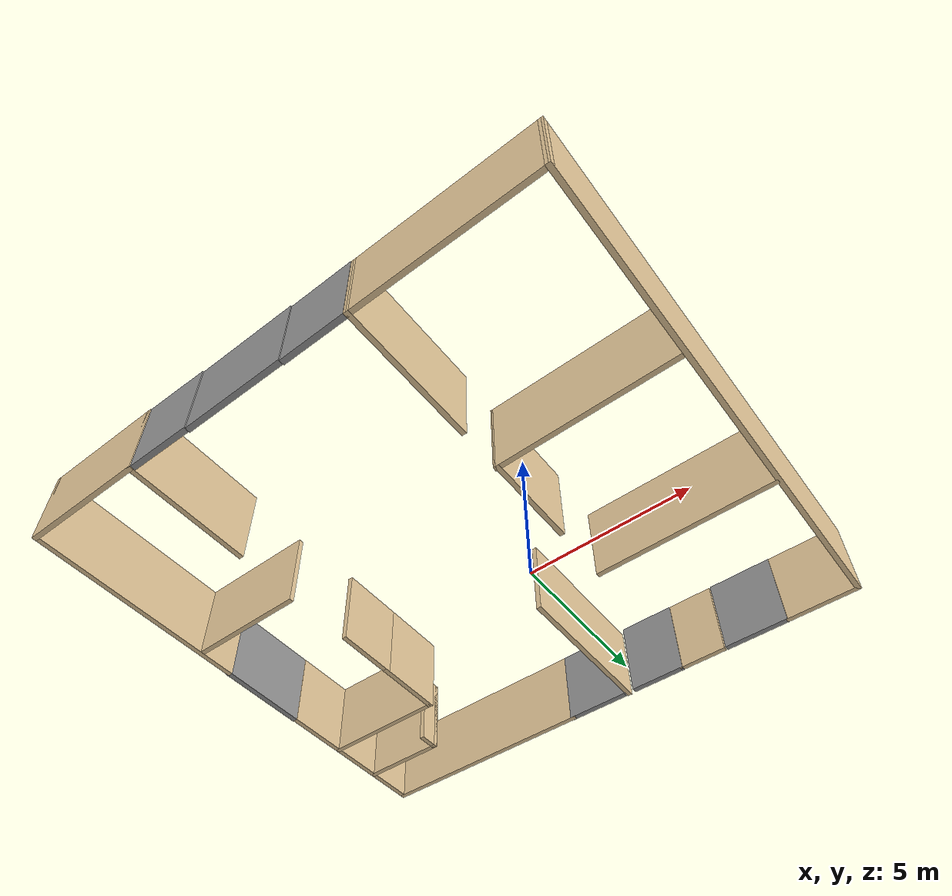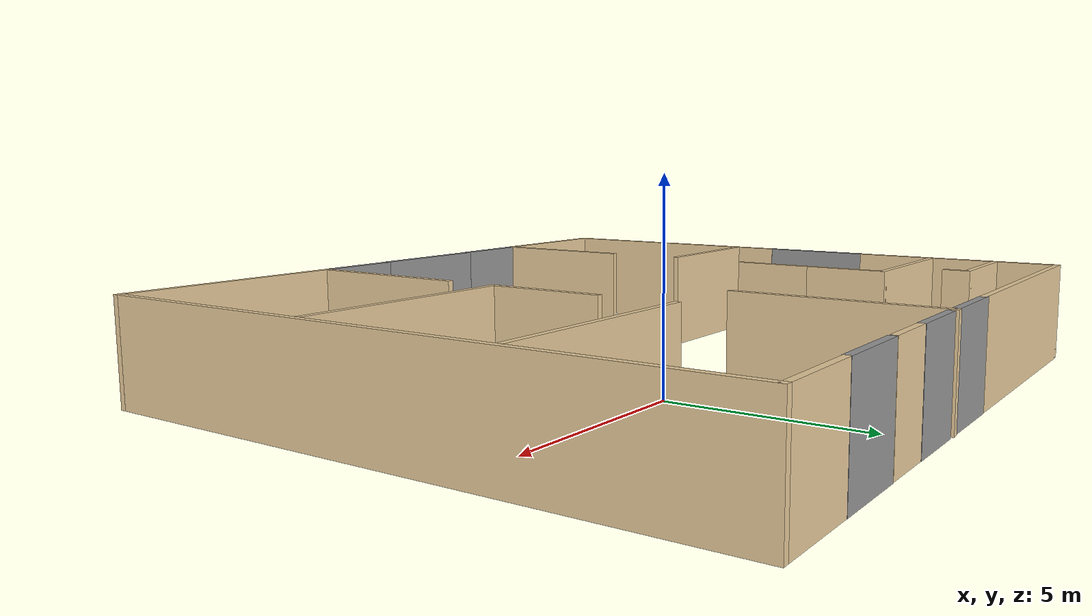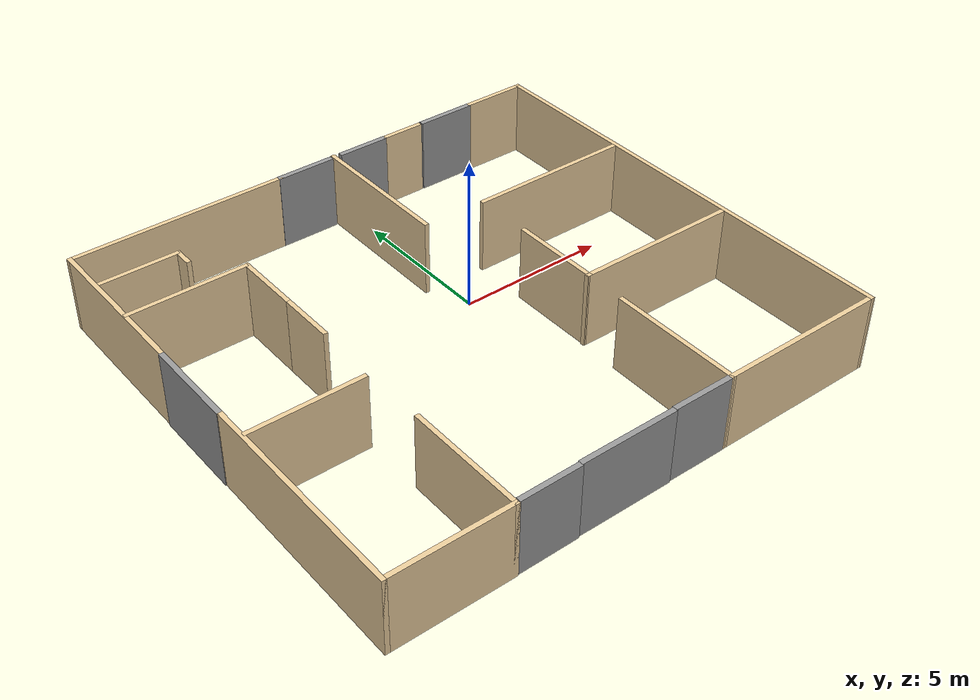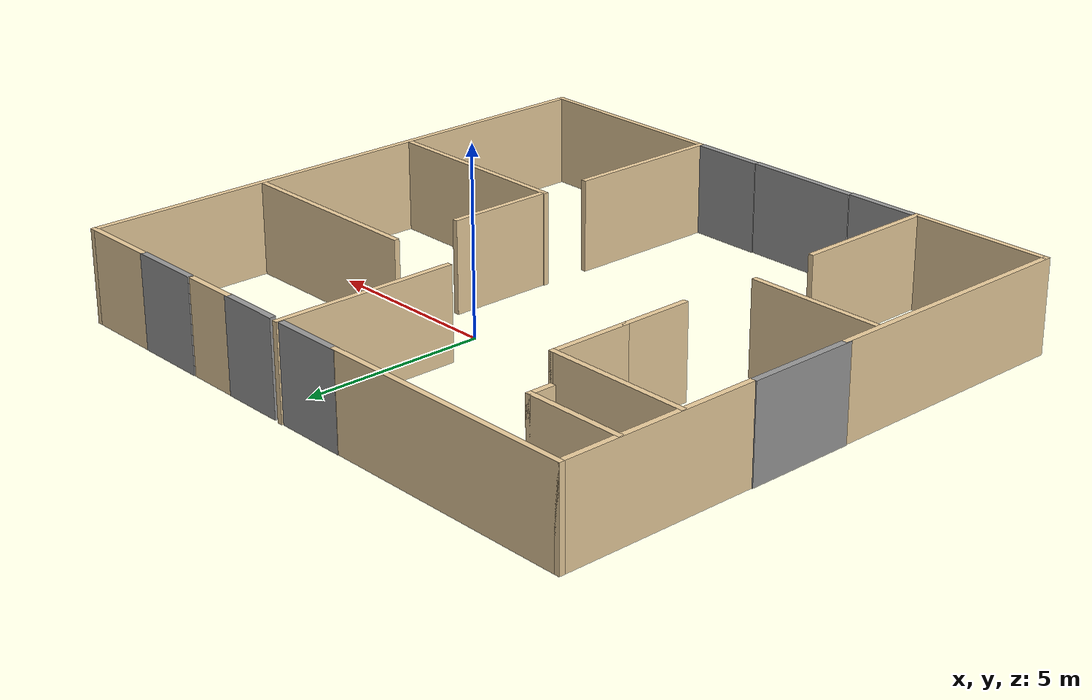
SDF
<?xml version='1.0'?>
<sdf version='1.6'>
  <model name='Building'>
    <pose frame=''>-1.41476 -1.56648 0 0 -0 0</pose>
    <link name='Door_1'>
      <collision name='Door_1_Collision'>
        <geometry>
          <box>
            <size>2 0.17 2.5</size>
          </box>
        </geometry>
        <pose frame=''>0 0 1.25 0 -0 0</pose>
      </collision>
      <visual name='Door_1_Visual'>
        <pose frame=''>0 0 1.25 0 -0 0</pose>
        <geometry>
          <box>
            <size>2 0.17 2.5</size>
          </box>
        </geometry>
        <material>
          <script>
            <uri>file://media/materials/scripts/gazebo.material</uri>
            <name>Gazebo/Grey</name>
          </script>
        </material>
      </visual>
      <pose frame=''>1.77302 -7.63321 0 0 -0 3.1393</pose>
    </link>
    <link name='Door_2'>
      <collision name='Door_2_Collision'>
        <geometry>
          <box>
            <size>2 0.17 2.5</size>
          </box>
        </geometry>
        <pose frame=''>0 0 1.25 0 -0 0</pose>
      </collision>
      <visual name='Door_2_Visual'>
        <pose frame=''>0 0 1.25 0 -0 0</pose>
        <geometry>
          <box>
            <size>2 0.17 2.5</size>
          </box>
        </geometry>
        <material>
          <script>
            <uri>file://media/materials/scripts/gazebo.material</uri>
            <name>Gazebo/Grey</name>
          </script>
        </material>
      </visual>
      <pose frame=''>-3.41797 -7.702 0 0 -0 -3.13381</pose>
    </link>
    <link name='Door_3'>
      <collision name='Door_3_Collision'>
        <geometry>
          <box>
            <size>1.75 0.17 2.5</size>
          </box>
        </geometry>
        <pose frame=''>0 0 1.25 0 -0 0</pose>
      </collision>
      <visual name='Door_3_Visual'>
        <pose frame=''>0 0 1.25 0 -0 0</pose>
        <geometry>
          <box>
            <size>1.75 0.17 2.5</size>
          </box>
        </geometry>
        <material>
          <script>
            <uri>file://media/materials/scripts/gazebo.material</uri>
            <name>Gazebo/Grey</name>
          </script>
        </material>
      </visual>
      <pose frame=''>1.87994 7.70603 0 0 -0 0</pose>
    </link>
    <link name='Wall_12'>
      <collision name='Wall_12_Collision'>
        <geometry>
          <box>
            <size>7.25 0.15 2.5</size>
          </box>
        </geometry>
        <pose frame=''>0 0 1.25 0 -0 0</pose>
      </collision>
      <visual name='Wall_12_Visual'>
        <pose frame=''>0 0 1.25 0 -0 0</pose>
        <geometry>
          <box>
            <size>7.25 0.15 2.5</size>
          </box>
        </geometry>
        <material>
          <script>
            <uri>file://media/materials/scripts/gazebo.material</uri>
            <name>Gazebo/Grey</name>
          </script>
          <ambient>0.921569 0.807843 0.615686 1</ambient>
        </material>
        <meta>
          <layer>0</layer>
        </meta>
      </visual>
      <pose frame=''>-8.3547 -4.19265 0 0 -0 -1.5708</pose>
    </link>
    <link name='Wall_14'>
      <collision name='Wall_14_Collision'>
        <geometry>
          <box>
            <size>7.25 0.15 2.5</size>
          </box>
        </geometry>
        <pose frame=''>0 0 1.25 0 -0 0</pose>
      </collision>
      <visual name='Wall_14_Visual'>
        <pose frame=''>0 0 1.25 0 -0 0</pose>
        <geometry>
          <box>
            <size>7.25 0.15 2.5</size>
          </box>
        </geometry>
        <material>
          <script>
            <uri>file://media/materials/scripts/gazebo.material</uri>
            <name>Gazebo/Grey</name>
          </script>
          <ambient>0.921569 0.807843 0.615686 1</ambient>
        </material>
        <meta>
          <layer>0</layer>
        </meta>
      </visual>
      <pose frame=''>-4.80157 7.70348 0 0 -0 0</pose>
    </link>
    <link name='Wall_16'>
      <collision name='Wall_16_Collision'>
        <geometry>
          <box>
            <size>5 0.15 2.5</size>
          </box>
        </geometry>
        <pose frame=''>0 0 1.25 0 -0 0</pose>
      </collision>
      <visual name='Wall_16_Visual'>
        <pose frame=''>0 0 1.25 0 -0 0</pose>
        <geometry>
          <box>
            <size>5 0.15 2.5</size>
          </box>
        </geometry>
        <material>
          <script>
            <uri>file://media/materials/scripts/gazebo.material</uri>
            <name>Gazebo/Grey</name>
          </script>
          <ambient>0.921569 0.807843 0.615686 1</ambient>
        </material>
        <meta>
          <layer>0</layer>
        </meta>
      </visual>
      <pose frame=''>0.791999 5.31765 0 0 -0 -1.5708</pose>
    </link>
    <link name='Wall_18'>
      <collision name='Wall_18_Collision'>
        <geometry>
          <box>
            <size>2.75 0.15 2.5</size>
          </box>
        </geometry>
        <pose frame=''>0 0 1.25 0 -0 0</pose>
      </collision>
      <visual name='Wall_18_Visual'>
        <pose frame=''>0 0 1.25 0 -0 0</pose>
        <geometry>
          <box>
            <size>2.75 0.15 2.5</size>
          </box>
        </geometry>
        <material>
          <script>
            <uri>file://media/materials/scripts/gazebo.material</uri>
            <name>Gazebo/Grey</name>
          </script>
          <ambient>0.921569 0.807843 0.615686 1</ambient>
        </material>
        <meta>
          <layer>0</layer>
        </meta>
      </visual>
      <pose frame=''>-7.02626 6.10787 0 0 -0 0</pose>
    </link>
    <link name='Wall_19'>
      <collision name='Wall_19_Collision'>
        <geometry>
          <box>
            <size>0.7 0.15 2.5</size>
          </box>
        </geometry>
        <pose frame=''>0 0 1.25 0 -0 0</pose>
      </collision>
      <visual name='Wall_19_Visual'>
        <pose frame=''>0 0 1.25 0 -0 0</pose>
        <geometry>
          <box>
            <size>0.7 0.15 2.5</size>
          </box>
        </geometry>
        <material>
          <script>
            <uri>file://media/materials/scripts/gazebo.material</uri>
            <name>Gazebo/Grey</name>
          </script>
          <ambient>0.921569 0.807843 0.615686 1</ambient>
        </material>
        <meta>
          <layer>0</layer>
        </meta>
      </visual>
      <pose frame=''>-5.72626 5.83287 0 0 -0 -1.5708</pose>
    </link>
    <link name='Wall_23'>
      <collision name='Wall_23_Collision'>
        <geometry>
          <box>
            <size>4 0.15 2.5</size>
          </box>
        </geometry>
        <pose frame=''>0 0 1.25 0 -0 0</pose>
      </collision>
      <visual name='Wall_23_Visual'>
        <pose frame=''>0 0 1.25 0 -0 0</pose>
        <geometry>
          <box>
            <size>4 0.15 2.5</size>
          </box>
        </geometry>
        <material>
          <script>
            <uri>file://media/materials/scripts/gazebo.material</uri>
            <name>Gazebo/Grey</name>
          </script>
          <ambient>0.921569 0.807843 0.615686 1</ambient>
        </material>
        <meta>
          <layer>0</layer>
        </meta>
      </visual>
      <pose frame=''>-6.40126 4.34787 0 0 -0 0</pose>
    </link>
    <link name='Wall_24'>
      <collision name='Wall_24_Collision'>
        <geometry>
          <box>
            <size>2.25 0.15 2.5</size>
          </box>
        </geometry>
        <pose frame=''>0 0 1.25 0 -0 0</pose>
      </collision>
      <visual name='Wall_24_Visual'>
        <pose frame=''>0 0 1.25 0 -0 0</pose>
        <geometry>
          <box>
            <size>2.25 0.15 2.5</size>
          </box>
        </geometry>
        <material>
          <script>
            <uri>file://media/materials/scripts/gazebo.material</uri>
            <name>Gazebo/Grey</name>
          </script>
          <ambient>0.921569 0.807843 0.615686 1</ambient>
        </material>
        <meta>
          <layer>0</layer>
        </meta>
      </visual>
      <pose frame=''>-4.47626 3.29787 0 0 -0 -1.5708</pose>
    </link>
    <link name='Wall_26'>
      <collision name='Wall_26_Collision'>
        <geometry>
          <box>
            <size>1.5 0.15 2.5</size>
          </box>
        </geometry>
        <pose frame=''>0 0 1.25 0 -0 0</pose>
      </collision>
      <visual name='Wall_26_Visual'>
        <pose frame=''>0 0 1.25 0 -0 0</pose>
        <geometry>
          <box>
            <size>1.5 0.15 2.5</size>
          </box>
        </geometry>
        <material>
          <script>
            <uri>file://media/materials/scripts/gazebo.material</uri>
            <name>Gazebo/Grey</name>
          </script>
          <ambient>0.921569 0.807843 0.615686 1</ambient>
        </material>
        <meta>
          <layer>0</layer>
        </meta>
      </visual>
      <pose frame=''>3.42874 7.70787 0 0 -0 0</pose>
    </link>
    <link name='Wall_28'>
      <collision name='Wall_28_Collision'>
        <geometry>
          <box>
            <size>2.25 0.15 2.5</size>
          </box>
        </geometry>
        <pose frame=''>0 0 1.25 0 -0 0</pose>
      </collision>
      <visual name='Wall_28_Visual'>
        <pose frame=''>0 0 1.25 0 -0 0</pose>
        <geometry>
          <box>
            <size>2.25 0.15 2.5</size>
          </box>
        </geometry>
        <material>
          <script>
            <uri>file://media/materials/scripts/gazebo.material</uri>
            <name>Gazebo/Grey</name>
          </script>
          <ambient>0.921569 0.807843 0.615686 1</ambient>
        </material>
        <meta>
          <layer>0</layer>
        </meta>
      </visual>
      <pose frame=''>7.30468 7.71385 0 0 -0 0</pose>
    </link>
    <link name='Wall_29'>
      <collision name='Wall_29_Collision'>
        <geometry>
          <box>
            <size>15.5 0.15 2.5</size>
          </box>
        </geometry>
        <pose frame=''>0 0 1.25 0 -0 0</pose>
      </collision>
      <visual name='Wall_29_Visual'>
        <pose frame=''>0 0 1.25 0 -0 0</pose>
        <geometry>
          <box>
            <size>15.5 0.15 2.5</size>
          </box>
        </geometry>
        <material>
          <script>
            <uri>file://media/materials/scripts/gazebo.material</uri>
            <name>Gazebo/Grey</name>
          </script>
          <ambient>0.921569 0.807843 0.615686 1</ambient>
        </material>
        <meta>
          <layer>0</layer>
        </meta>
      </visual>
      <pose frame=''>8.35468 0.038854 0 0 -0 -1.5708</pose>
    </link>
    <link name='Wall_31'>
      <collision name='Wall_31_Collision'>
        <geometry>
          <box>
            <size>3.75 0.15 2.5</size>
          </box>
        </geometry>
        <pose frame=''>0 0 1.25 0 -0 0</pose>
      </collision>
      <visual name='Wall_31_Visual'>
        <pose frame=''>0 0 1.25 0 -0 0</pose>
        <geometry>
          <box>
            <size>3.75 0.15 2.5</size>
          </box>
        </geometry>
        <material>
          <script>
            <uri>file://media/materials/scripts/gazebo.material</uri>
            <name>Gazebo/Grey</name>
          </script>
          <ambient>0.921569 0.807843 0.615686 1</ambient>
        </material>
        <meta>
          <layer>0</layer>
        </meta>
      </visual>
      <pose frame=''>-6.46277 -1.77396 0 0 -0 0</pose>
    </link>
    <link name='Wall_33'>
      <collision name='Wall_33_Collision'>
        <geometry>
          <box>
            <size>2 0.15 2.5</size>
          </box>
        </geometry>
        <pose frame=''>0 0 1.25 0 -0 0</pose>
      </collision>
      <visual name='Wall_33_Visual'>
        <pose frame=''>0 0 1.25 0 -0 0</pose>
        <geometry>
          <box>
            <size>2 0.15 2.5</size>
          </box>
        </geometry>
        <material>
          <script>
            <uri>file://media/materials/scripts/gazebo.material</uri>
            <name>Gazebo/Grey</name>
          </script>
          <ambient>0.921569 0.807843 0.615686 1</ambient>
        </material>
        <meta>
          <layer>0</layer>
        </meta>
      </visual>
      <pose frame=''>-4.47626 1.32287 0 0 -0 -1.5708</pose>
    </link>
    <link name='Wall_35'>
      <collision name='Wall_35_Collision'>
        <geometry>
          <box>
            <size>5.5 0.15 2.5</size>
          </box>
        </geometry>
        <pose frame=''>0 0 1.25 0 -0 0</pose>
      </collision>
      <visual name='Wall_35_Visual'>
        <pose frame=''>0 0 1.25 0 -0 0</pose>
        <geometry>
          <box>
            <size>5.5 0.15 2.5</size>
          </box>
        </geometry>
        <material>
          <script>
            <uri>file://media/materials/scripts/gazebo.material</uri>
            <name>Gazebo/Grey</name>
          </script>
          <ambient>0.921569 0.807843 0.615686 1</ambient>
        </material>
        <meta>
          <layer>0</layer>
        </meta>
      </visual>
      <pose frame=''>5.58136 2.77318 0 0 -0 0</pose>
    </link>
    <link name='Wall_38'>
      <collision name='Wall_38_Collision'>
        <geometry>
          <box>
            <size>3 0.15 2.5</size>
          </box>
        </geometry>
        <pose frame=''>0 0 1.25 0 -0 0</pose>
      </collision>
      <visual name='Wall_38_Visual'>
        <pose frame=''>0 0 1.25 0 -0 0</pose>
        <geometry>
          <box>
            <size>3 0.15 2.5</size>
          </box>
        </geometry>
        <material>
          <script>
            <uri>file://media/materials/scripts/gazebo.material</uri>
            <name>Gazebo/Grey</name>
          </script>
          <ambient>0.921569 0.807843 0.615686 1</ambient>
        </material>
        <meta>
          <layer>0</layer>
        </meta>
      </visual>
      <pose frame=''>2.90822 -0.593394 0 0 -0 -1.5708</pose>
    </link>
    <link name='Wall_39'>
      <collision name='Wall_39_Collision'>
        <geometry>
          <box>
            <size>5.46978 0.15 2.5</size>
          </box>
        </geometry>
        <pose frame=''>0 0 1.25 0 -0 0</pose>
      </collision>
      <visual name='Wall_39_Visual'>
        <pose frame=''>0 0 1.25 0 -0 0</pose>
        <geometry>
          <box>
            <size>5.46978 0.15 2.5</size>
          </box>
        </geometry>
        <material>
          <script>
            <uri>file://media/materials/scripts/gazebo.material</uri>
            <name>Gazebo/Grey</name>
          </script>
          <ambient>0.921569 0.807843 0.615686 1</ambient>
        </material>
        <meta>
          <layer>0</layer>
        </meta>
      </visual>
      <pose frame=''>5.53786 -2.02643 0 0 -0 -0.00302</pose>
    </link>
    <link name='Wall_42'>
      <collision name='Wall_42_Collision'>
        <geometry>
          <box>
            <size>5.65695 0.15 2.5</size>
          </box>
        </geometry>
        <pose frame=''>0 0 1.25 0 -0 0</pose>
      </collision>
      <visual name='Wall_42_Visual'>
        <pose frame=''>0 0 1.25 0 -0 0</pose>
        <geometry>
          <box>
            <size>5.65695 0.15 2.5</size>
          </box>
        </geometry>
        <material>
          <script>
            <uri>file://media/materials/scripts/gazebo.material</uri>
            <name>Gazebo/Grey</name>
          </script>
          <ambient>0.921569 0.807843 0.615686 1</ambient>
        </material>
        <meta>
          <layer>0</layer>
        </meta>
      </visual>
      <pose frame=''>5.60121 -7.6353 0 0 -0 -0.000306</pose>
    </link>
    <link name='Wall_44'>
      <collision name='Wall_44_Collision'>
        <geometry>
          <box>
            <size>4.34305 0.15 2.5</size>
          </box>
        </geometry>
        <pose frame=''>0 0 1.25 0 -0 0</pose>
      </collision>
      <visual name='Wall_44_Visual'>
        <pose frame=''>0 0 1.25 0 -0 0</pose>
        <geometry>
          <box>
            <size>4.34305 0.15 2.5</size>
          </box>
        </geometry>
        <material>
          <script>
            <uri>file://media/materials/scripts/gazebo.material</uri>
            <name>Gazebo/Grey</name>
          </script>
          <ambient>0.921569 0.807843 0.615686 1</ambient>
        </material>
        <meta>
          <layer>0</layer>
        </meta>
      </visual>
      <pose frame=''>2.85823 -5.53796 0 0 -0 -1.5758</pose>
    </link>
    <link name='Wall_46'>
      <collision name='Wall_46_Collision'>
        <geometry>
          <box>
            <size>4 0.15 2.5</size>
          </box>
        </geometry>
        <pose frame=''>0 0 1.25 0 -0 0</pose>
      </collision>
      <visual name='Wall_46_Visual'>
        <pose frame=''>0 0 1.25 0 -0 0</pose>
        <geometry>
          <box>
            <size>4 0.15 2.5</size>
          </box>
        </geometry>
        <material>
          <script>
            <uri>file://media/materials/scripts/gazebo.material</uri>
            <name>Gazebo/Grey</name>
          </script>
          <ambient>0.921569 0.807843 0.615686 1</ambient>
        </material>
        <meta>
          <layer>0</layer>
        </meta>
      </visual>
      <pose frame=''>-6.42971 -7.74265 0 0 -0 0</pose>
    </link>
    <link name='Wall_48'>
      <collision name='Wall_48_Collision'>
        <geometry>
          <box>
            <size>4 0.15 2.5</size>
          </box>
        </geometry>
        <pose frame=''>0 0 1.25 0 -0 0</pose>
      </collision>
      <visual name='Wall_48_Visual'>
        <pose frame=''>0 0 1.25 0 -0 0</pose>
        <geometry>
          <box>
            <size>4 0.15 2.5</size>
          </box>
        </geometry>
        <material>
          <script>
            <uri>file://media/materials/scripts/gazebo.material</uri>
            <name>Gazebo/Grey</name>
          </script>
          <ambient>0.921569 0.807843 0.615686 1</ambient>
        </material>
        <meta>
          <layer>0</layer>
        </meta>
      </visual>
      <pose frame=''>-4.50471 -5.81765 0 0 -0 1.5708</pose>
    </link>
    <link name='Wall_9'>
      <collision name='Wall_9_Collision'>
        <geometry>
          <box>
            <size>5.5 0.15 2.5</size>
          </box>
        </geometry>
        <pose frame=''>0 0 1.25 0 -0 0</pose>
      </collision>
      <visual name='Wall_9_Visual'>
        <pose frame=''>0 0 1.25 0 -0 0</pose>
        <geometry>
          <box>
            <size>5.5 0.15 2.5</size>
          </box>
        </geometry>
        <material>
          <script>
            <uri>file://media/materials/scripts/gazebo.material</uri>
            <name>Gazebo/Grey</name>
          </script>
          <ambient>0.921569 0.807843 0.615686 1</ambient>
        </material>
        <meta>
          <layer>0</layer>
        </meta>
      </visual>
      <pose frame=''>-8.35157 5.02848 0 0 -0 -1.5708</pose>
    </link>
    <link name='Window_2'>
      <collision name='Window_2_Collision'>
        <geometry>
          <box>
            <size>3 0.17 2.5</size>
          </box>
        </geometry>
        <pose frame=''>0 0 1.25 0 -0 0</pose>
      </collision>
      <visual name='Window_2_Visual'>
        <pose frame=''>0 0 1.25 0 -0 0</pose>
        <geometry>
          <box>
            <size>3 0.17 2.5</size>
          </box>
        </geometry>
        <material>
          <script>
            <uri>file://media/materials/scripts/gazebo.material</uri>
            <name>Gazebo/Grey</name>
          </script>
        </material>
      </visual>
      <pose frame=''>-8.3671 0.789602 0 0 0 -1.5705</pose>
    </link>
    <link name='Window_3'>
      <collision name='Window_3_Collision'>
        <geometry>
          <box>
            <size>2 0.17 2.5</size>
          </box>
        </geometry>
        <pose frame=''>0 0 1.25 0 -0 0</pose>
      </collision>
      <visual name='Window_3_Visual'>
        <pose frame=''>0 0 1.25 0 -0 0</pose>
        <geometry>
          <box>
            <size>2 0.17 2.5</size>
          </box>
        </geometry>
        <material>
          <script>
            <uri>file://media/materials/scripts/gazebo.material</uri>
            <name>Gazebo/Grey</name>
          </script>
        </material>
      </visual>
      <pose frame=''>5.22216 7.70864 0 0 -0 0</pose>
    </link>
    <link name='Window_4'>
      <collision name='Window_4_Collision'>
        <geometry>
          <box>
            <size>3.2 0.17 2.5</size>
          </box>
        </geometry>
        <pose frame=''>0 0 1.25 0 -0 0</pose>
      </collision>
      <visual name='Window_4_Visual'>
        <pose frame=''>0 0 1.25 0 -0 0</pose>
        <geometry>
          <box>
            <size>3.2 0.17 2.5</size>
          </box>
        </geometry>
        <material>
          <script>
            <uri>file://media/materials/scripts/gazebo.material</uri>
            <name>Gazebo/Grey</name>
          </script>
        </material>
      </visual>
      <pose frame=''>-0.82762 -7.66069 0 0 -0 0</pose>
    </link>
    <link name='Window_5'>
      <collision name='Window_5_Collision'>
        <geometry>
          <box>
            <size>2 0.17 2.5</size>
          </box>
        </geometry>
        <pose frame=''>0 0 1.25 0 -0 0</pose>
      </collision>
      <visual name='Window_5_Visual'>
        <pose frame=''>0 0 1.25 0 -0 0</pose>
        <geometry>
          <box>
            <size>2 0.17 2.5</size>
          </box>
        </geometry>
        <material>
          <script>
            <uri>file://media/materials/scripts/gazebo.material</uri>
            <name>Gazebo/Grey</name>
          </script>
        </material>
      </visual>
      <pose frame=''>-0.31136 7.70603 0 0 -0 0</pose>
    </link>
    <static>1</static>
  </model>
</sdf>
